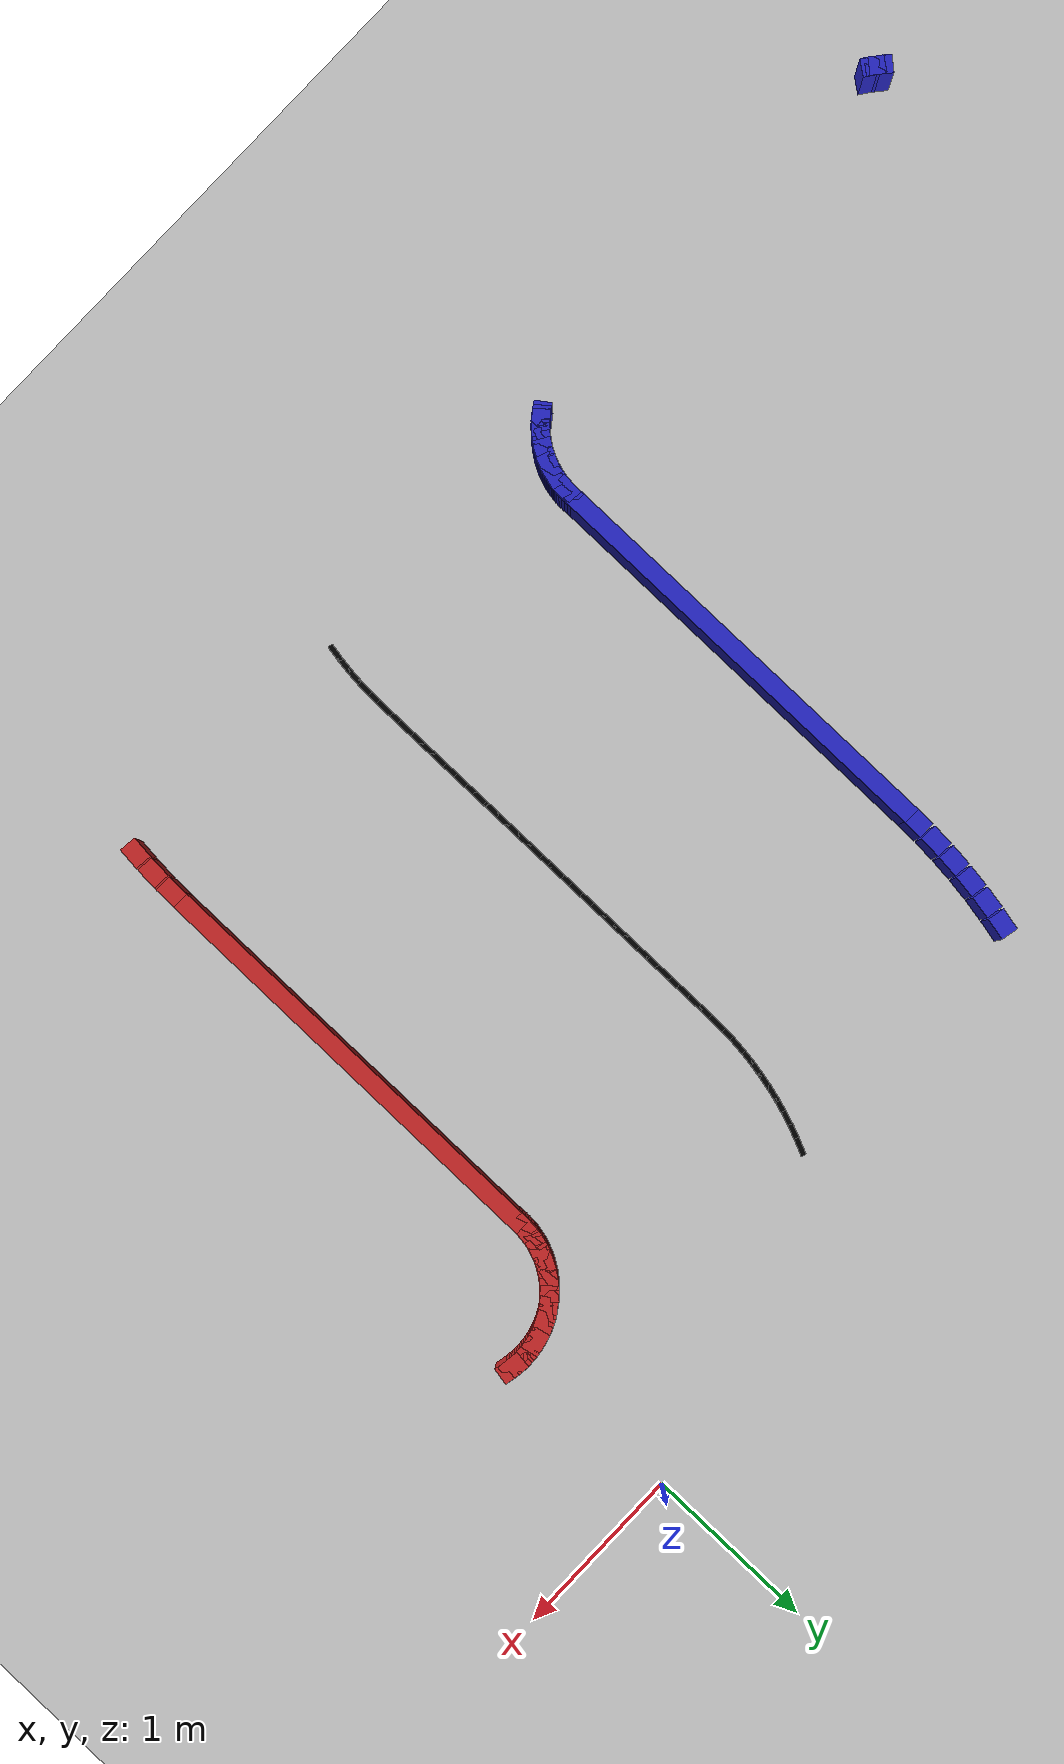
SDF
<sdf version="1.6">
 <world name="new_race_track">
  <include><uri>model://ground_plane</uri></include>
  <include><uri>model://sun</uri></include>
  <model name="race_track">
   <static>true</static>
   <link name="wall_link_22">
    <collision name="c"><geometry><box><size>0.1305 0.1 0.4</size></box></geometry></collision>
    <visual name="v">
     <geometry><box><size>0.1305 0.1 0.4</size></box></geometry>
     <material><ambient>0.15 0.15 0.8 1</ambient><diffuse>0.15 0.15 0.8 1</diffuse></material>
    </visual>
    <pose>-6.3237 -4.3805 0.200 0 0 -0.7048</pose>
   </link>
   <link name="wall_link_23">
    <collision name="c"><geometry><box><size>0.1305 0.1 0.4</size></box></geometry></collision>
    <visual name="v">
     <geometry><box><size>0.1305 0.1 0.4</size></box></geometry>
     <material><ambient>0.15 0.15 0.8 1</ambient><diffuse>0.15 0.15 0.8 1</diffuse></material>
    </visual>
    <pose>-6.3081 -4.3933 0.200 0 0 -0.6646</pose>
   </link>
   <link name="wall_link_24">
    <collision name="c"><geometry><box><size>0.1305 0.1 0.4</size></box></geometry></collision>
    <visual name="v">
     <geometry><box><size>0.1305 0.1 0.4</size></box></geometry>
     <material><ambient>0.15 0.15 0.8 1</ambient><diffuse>0.15 0.15 0.8 1</diffuse></material>
    </visual>
    <pose>-6.2920 -4.4054 0.200 0 0 -0.6243</pose>
   </link>
   <link name="wall_link_56">
    <collision name="c"><geometry><box><size>0.1305 0.1 0.4</size></box></geometry></collision>
    <visual name="v">
     <geometry><box><size>0.1305 0.1 0.4</size></box></geometry>
     <material><ambient>0.15 0.15 0.8 1</ambient><diffuse>0.15 0.15 0.8 1</diffuse></material>
    </visual>
    <pose>-3.7080 -4.4054 0.200 0 0 0.6243</pose>
   </link>
   <link name="wall_link_57">
    <collision name="c"><geometry><box><size>0.1305 0.1 0.4</size></box></geometry></collision>
    <visual name="v">
     <geometry><box><size>0.1305 0.1 0.4</size></box></geometry>
     <material><ambient>0.15 0.15 0.8 1</ambient><diffuse>0.15 0.15 0.8 1</diffuse></material>
    </visual>
    <pose>-3.6919 -4.3933 0.200 0 0 0.6646</pose>
   </link>
   <link name="wall_link_58">
    <collision name="c"><geometry><box><size>0.1305 0.1 0.4</size></box></geometry></collision>
    <visual name="v">
     <geometry><box><size>0.1305 0.1 0.4</size></box></geometry>
     <material><ambient>0.15 0.15 0.8 1</ambient><diffuse>0.15 0.15 0.8 1</diffuse></material>
    </visual>
    <pose>-3.6763 -4.3805 0.200 0 0 0.7048</pose>
   </link>
   <link name="wall_link_59">
    <collision name="c"><geometry><box><size>0.1305 0.1 0.4</size></box></geometry></collision>
    <visual name="v">
     <geometry><box><size>0.1305 0.1 0.4</size></box></geometry>
     <material><ambient>0.15 0.15 0.8 1</ambient><diffuse>0.15 0.15 0.8 1</diffuse></material>
    </visual>
    <pose>-3.6612 -4.3672 0.200 0 0 0.7451</pose>
   </link>
   <link name="wall_link_60">
    <collision name="c"><geometry><box><size>0.1305 0.1 0.4</size></box></geometry></collision>
    <visual name="v">
     <geometry><box><size>0.1305 0.1 0.4</size></box></geometry>
     <material><ambient>0.15 0.15 0.8 1</ambient><diffuse>0.15 0.15 0.8 1</diffuse></material>
    </visual>
    <pose>-3.6467 -4.3533 0.200 0 0 0.7854</pose>
   </link>
   <link name="wall_link_61">
    <collision name="c"><geometry><box><size>0.1305 0.1 0.4</size></box></geometry></collision>
    <visual name="v">
     <geometry><box><size>0.1305 0.1 0.4</size></box></geometry>
     <material><ambient>0.15 0.15 0.8 1</ambient><diffuse>0.15 0.15 0.8 1</diffuse></material>
    </visual>
    <pose>-3.6328 -4.3388 0.200 0 0 0.8257</pose>
   </link>
   <link name="wall_link_62">
    <collision name="c"><geometry><box><size>0.1305 0.1 0.4</size></box></geometry></collision>
    <visual name="v">
     <geometry><box><size>0.1305 0.1 0.4</size></box></geometry>
     <material><ambient>0.15 0.15 0.8 1</ambient><diffuse>0.15 0.15 0.8 1</diffuse></material>
    </visual>
    <pose>-3.6195 -4.3237 0.200 0 0 0.8660</pose>
   </link>
   <link name="wall_link_63">
    <collision name="c"><geometry><box><size>0.1305 0.1 0.4</size></box></geometry></collision>
    <visual name="v">
     <geometry><box><size>0.1305 0.1 0.4</size></box></geometry>
     <material><ambient>0.15 0.15 0.8 1</ambient><diffuse>0.15 0.15 0.8 1</diffuse></material>
    </visual>
    <pose>-3.6067 -4.3081 0.200 0 0 0.9062</pose>
   </link>
   <link name="wall_link_64">
    <collision name="c"><geometry><box><size>0.1305 0.1 0.4</size></box></geometry></collision>
    <visual name="v">
     <geometry><box><size>0.1305 0.1 0.4</size></box></geometry>
     <material><ambient>0.15 0.15 0.8 1</ambient><diffuse>0.15 0.15 0.8 1</diffuse></material>
    </visual>
    <pose>-3.5946 -4.2920 0.200 0 0 0.9465</pose>
   </link>
   <link name="wall_link_65">
    <collision name="c"><geometry><box><size>0.1305 0.1 0.4</size></box></geometry></collision>
    <visual name="v">
     <geometry><box><size>0.1305 0.1 0.4</size></box></geometry>
     <material><ambient>0.15 0.15 0.8 1</ambient><diffuse>0.15 0.15 0.8 1</diffuse></material>
    </visual>
    <pose>-3.5832 -4.2755 0.200 0 0 0.9868</pose>
   </link>
   <link name="wall_link_66">
    <collision name="c"><geometry><box><size>0.1305 0.1 0.4</size></box></geometry></collision>
    <visual name="v">
     <geometry><box><size>0.1305 0.1 0.4</size></box></geometry>
     <material><ambient>0.15 0.15 0.8 1</ambient><diffuse>0.15 0.15 0.8 1</diffuse></material>
    </visual>
    <pose>-3.5725 -4.2585 0.200 0 0 1.0271</pose>
   </link>
   <link name="wall_link_67">
    <collision name="c"><geometry><box><size>0.1305 0.1 0.4</size></box></geometry></collision>
    <visual name="v">
     <geometry><box><size>0.1305 0.1 0.4</size></box></geometry>
     <material><ambient>0.15 0.15 0.8 1</ambient><diffuse>0.15 0.15 0.8 1</diffuse></material>
    </visual>
    <pose>-3.5624 -4.2410 0.200 0 0 1.0673</pose>
   </link>
   <link name="wall_link_68">
    <collision name="c"><geometry><box><size>0.1305 0.1 0.4</size></box></geometry></collision>
    <visual name="v">
     <geometry><box><size>0.1305 0.1 0.4</size></box></geometry>
     <material><ambient>0.15 0.15 0.8 1</ambient><diffuse>0.15 0.15 0.8 1</diffuse></material>
    </visual>
    <pose>-3.5530 -4.2232 0.200 0 0 1.1076</pose>
   </link>
   <link name="wall_link_69">
    <collision name="c"><geometry><box><size>0.1305 0.1 0.4</size></box></geometry></collision>
    <visual name="v">
     <geometry><box><size>0.1305 0.1 0.4</size></box></geometry>
     <material><ambient>0.15 0.15 0.8 1</ambient><diffuse>0.15 0.15 0.8 1</diffuse></material>
    </visual>
    <pose>-3.5444 -4.2050 0.200 0 0 1.1479</pose>
   </link>
   <link name="wall_link_70">
    <collision name="c"><geometry><box><size>0.1305 0.1 0.4</size></box></geometry></collision>
    <visual name="v">
     <geometry><box><size>0.1305 0.1 0.4</size></box></geometry>
     <material><ambient>0.15 0.15 0.8 1</ambient><diffuse>0.15 0.15 0.8 1</diffuse></material>
    </visual>
    <pose>-3.5365 -4.1865 0.200 0 0 1.1882</pose>
   </link>
   <link name="wall_link_71">
    <collision name="c"><geometry><box><size>0.1305 0.1 0.4</size></box></geometry></collision>
    <visual name="v">
     <geometry><box><size>0.1305 0.1 0.4</size></box></geometry>
     <material><ambient>0.15 0.15 0.8 1</ambient><diffuse>0.15 0.15 0.8 1</diffuse></material>
    </visual>
    <pose>-3.5294 -4.1677 0.200 0 0 1.2284</pose>
   </link>
   <link name="wall_link_72">
    <collision name="c"><geometry><box><size>0.1305 0.1 0.4</size></box></geometry></collision>
    <visual name="v">
     <geometry><box><size>0.1305 0.1 0.4</size></box></geometry>
     <material><ambient>0.15 0.15 0.8 1</ambient><diffuse>0.15 0.15 0.8 1</diffuse></material>
    </visual>
    <pose>-3.5230 -4.1486 0.200 0 0 1.2687</pose>
   </link>
   <link name="wall_link_73">
    <collision name="c"><geometry><box><size>0.1305 0.1 0.4</size></box></geometry></collision>
    <visual name="v">
     <geometry><box><size>0.1305 0.1 0.4</size></box></geometry>
     <material><ambient>0.15 0.15 0.8 1</ambient><diffuse>0.15 0.15 0.8 1</diffuse></material>
    </visual>
    <pose>-3.5174 -4.1293 0.200 0 0 1.3090</pose>
   </link>
   <link name="wall_link_74">
    <collision name="c"><geometry><box><size>0.1305 0.1 0.4</size></box></geometry></collision>
    <visual name="v">
     <geometry><box><size>0.1305 0.1 0.4</size></box></geometry>
     <material><ambient>0.15 0.15 0.8 1</ambient><diffuse>0.15 0.15 0.8 1</diffuse></material>
    </visual>
    <pose>-3.5126 -4.1098 0.200 0 0 1.3493</pose>
   </link>
   <link name="wall_link_75">
    <collision name="c"><geometry><box><size>0.1305 0.1 0.4</size></box></geometry></collision>
    <visual name="v">
     <geometry><box><size>0.1305 0.1 0.4</size></box></geometry>
     <material><ambient>0.15 0.15 0.8 1</ambient><diffuse>0.15 0.15 0.8 1</diffuse></material>
    </visual>
    <pose>-3.5086 -4.0901 0.200 0 0 1.3896</pose>
   </link>
   <link name="wall_link_76">
    <collision name="c"><geometry><box><size>0.1305 0.1 0.4</size></box></geometry></collision>
    <visual name="v">
     <geometry><box><size>0.1305 0.1 0.4</size></box></geometry>
     <material><ambient>0.15 0.15 0.8 1</ambient><diffuse>0.15 0.15 0.8 1</diffuse></material>
    </visual>
    <pose>-3.5054 -4.0702 0.200 0 0 1.4298</pose>
   </link>
   <link name="wall_link_77">
    <collision name="c"><geometry><box><size>0.1305 0.1 0.4</size></box></geometry></collision>
    <visual name="v">
     <geometry><box><size>0.1305 0.1 0.4</size></box></geometry>
     <material><ambient>0.15 0.15 0.8 1</ambient><diffuse>0.15 0.15 0.8 1</diffuse></material>
    </visual>
    <pose>-3.5029 -4.0502 0.200 0 0 1.4701</pose>
   </link>
   <link name="wall_link_78">
    <collision name="c"><geometry><box><size>0.1305 0.1 0.4</size></box></geometry></collision>
    <visual name="v">
     <geometry><box><size>0.1305 0.1 0.4</size></box></geometry>
     <material><ambient>0.15 0.15 0.8 1</ambient><diffuse>0.15 0.15 0.8 1</diffuse></material>
    </visual>
    <pose>-3.5013 -4.0302 0.200 0 0 1.5104</pose>
   </link>
   <link name="wall_link_79">
    <collision name="c"><geometry><box><size>0.1305 0.1 0.4</size></box></geometry></collision>
    <visual name="v">
     <geometry><box><size>0.1305 0.1 0.4</size></box></geometry>
     <material><ambient>0.15 0.15 0.8 1</ambient><diffuse>0.15 0.15 0.8 1</diffuse></material>
    </visual>
    <pose>-3.5005 -4.0101 0.200 0 0 1.5507</pose>
   </link>
   <link name="merged_wall_link_80">
    <pose>-3.5000 -2.7600 0.2000 0.0000 0.0000 1.5708</pose>
    <collision name="c"><geometry><box><size>2.5300 0.1000 0.4000</size></box></geometry></collision>
    <visual name="v">
     <geometry><box><size>2.5300 0.1000 0.4000</size></box></geometry>
     <material><ambient>0.15 0.15 0.8 1</ambient><diffuse>0.15 0.15 0.8 1</diffuse></material>
    </visual>
   </link>
   <link name="wall_link_81">
    <collision name="c"><geometry><box><size>0.1305 0.1 0.4</size></box></geometry></collision>
    <visual name="v">
     <geometry><box><size>0.1305 0.1 0.4</size></box></geometry>
     <material><ambient>0.15 0.15 0.8 1</ambient><diffuse>0.15 0.15 0.8 1</diffuse></material>
    </visual>
    <pose>-3.4989 -1.4495 0.200 0 0 1.5507</pose>
   </link>
   <link name="wall_link_82">
    <collision name="c"><geometry><box><size>0.1305 0.1 0.4</size></box></geometry></collision>
    <visual name="v">
     <geometry><box><size>0.1305 0.1 0.4</size></box></geometry>
     <material><ambient>0.15 0.15 0.8 1</ambient><diffuse>0.15 0.15 0.8 1</diffuse></material>
    </visual>
    <pose>-3.4932 -1.3087 0.200 0 0 1.5104</pose>
   </link>
   <link name="wall_link_83">
    <collision name="c"><geometry><box><size>0.1305 0.1 0.4</size></box></geometry></collision>
    <visual name="v">
     <geometry><box><size>0.1305 0.1 0.4</size></box></geometry>
     <material><ambient>0.15 0.15 0.8 1</ambient><diffuse>0.15 0.15 0.8 1</diffuse></material>
    </visual>
    <pose>-3.4819 -1.1682 0.200 0 0 1.4701</pose>
   </link>
   <link name="wall_link_84">
    <collision name="c"><geometry><box><size>0.1305 0.1 0.4</size></box></geometry></collision>
    <visual name="v">
     <geometry><box><size>0.1305 0.1 0.4</size></box></geometry>
     <material><ambient>0.15 0.15 0.8 1</ambient><diffuse>0.15 0.15 0.8 1</diffuse></material>
    </visual>
    <pose>-3.4649 -1.0283 0.200 0 0 1.4298</pose>
   </link>
   <link name="wall_link_85">
    <collision name="c"><geometry><box><size>0.1305 0.1 0.4</size></box></geometry></collision>
    <visual name="v">
     <geometry><box><size>0.1305 0.1 0.4</size></box></geometry>
     <material><ambient>0.15 0.15 0.8 1</ambient><diffuse>0.15 0.15 0.8 1</diffuse></material>
    </visual>
    <pose>-3.4423 -0.8892 0.200 0 0 1.3896</pose>
   </link>
   <link name="wall_link_86">
    <collision name="c"><geometry><box><size>0.1305 0.1 0.4</size></box></geometry></collision>
    <visual name="v">
     <geometry><box><size>0.1305 0.1 0.4</size></box></geometry>
     <material><ambient>0.15 0.15 0.8 1</ambient><diffuse>0.15 0.15 0.8 1</diffuse></material>
    </visual>
    <pose>-3.4141 -0.7511 0.200 0 0 1.3493</pose>
   </link>
   <link name="wall_link_489">
    <collision name="c"><geometry><box><size>0.1305 0.1 0.4</size></box></geometry></collision>
    <visual name="v">
     <geometry><box><size>0.1305 0.1 0.4</size></box></geometry>
     <material><ambient>0.8 0.15 0.15 1</ambient><diffuse>0.8 0.15 0.15 1</diffuse></material>
    </visual>
    <pose>-0.5181 -4.3518 0.200 0 0 1.4701</pose>
   </link>
   <link name="wall_link_490">
    <collision name="c"><geometry><box><size>0.1305 0.1 0.4</size></box></geometry></collision>
    <visual name="v">
     <geometry><box><size>0.1305 0.1 0.4</size></box></geometry>
     <material><ambient>0.8 0.15 0.15 1</ambient><diffuse>0.8 0.15 0.15 1</diffuse></material>
    </visual>
    <pose>-0.5068 -4.2113 0.200 0 0 1.5104</pose>
   </link>
   <link name="wall_link_491">
    <collision name="c"><geometry><box><size>0.1305 0.1 0.4</size></box></geometry></collision>
    <visual name="v">
     <geometry><box><size>0.1305 0.1 0.4</size></box></geometry>
     <material><ambient>0.8 0.15 0.15 1</ambient><diffuse>0.8 0.15 0.15 1</diffuse></material>
    </visual>
    <pose>-0.5011 -4.0705 0.200 0 0 1.5507</pose>
   </link>
   <link name="merged_wall_link_492">
    <pose>-0.5000 -2.7600 0.2000 0.0000 0.0000 1.5708</pose>
    <collision name="c"><geometry><box><size>2.5300 0.1000 0.4000</size></box></geometry></collision>
    <visual name="v">
     <geometry><box><size>2.5300 0.1000 0.4000</size></box></geometry>
     <material><ambient>0.8 0.15 0.15 1</ambient><diffuse>0.8 0.15 0.15 1</diffuse></material>
    </visual>
   </link>
   <link name="wall_link_493">
    <collision name="c"><geometry><box><size>0.1305 0.1 0.4</size></box></geometry></collision>
    <visual name="v">
     <geometry><box><size>0.1305 0.1 0.4</size></box></geometry>
     <material><ambient>0.8 0.15 0.15 1</ambient><diffuse>0.8 0.15 0.15 1</diffuse></material>
    </visual>
    <pose>-0.4995 -1.5099 0.200 0 0 1.5507</pose>
   </link>
   <link name="wall_link_494">
    <collision name="c"><geometry><box><size>0.1305 0.1 0.4</size></box></geometry></collision>
    <visual name="v">
     <geometry><box><size>0.1305 0.1 0.4</size></box></geometry>
     <material><ambient>0.8 0.15 0.15 1</ambient><diffuse>0.8 0.15 0.15 1</diffuse></material>
    </visual>
    <pose>-0.4987 -1.4898 0.200 0 0 1.5104</pose>
   </link>
   <link name="wall_link_495">
    <collision name="c"><geometry><box><size>0.1305 0.1 0.4</size></box></geometry></collision>
    <visual name="v">
     <geometry><box><size>0.1305 0.1 0.4</size></box></geometry>
     <material><ambient>0.8 0.15 0.15 1</ambient><diffuse>0.8 0.15 0.15 1</diffuse></material>
    </visual>
    <pose>-0.4971 -1.4698 0.200 0 0 1.4701</pose>
   </link>
   <link name="wall_link_496">
    <collision name="c"><geometry><box><size>0.1305 0.1 0.4</size></box></geometry></collision>
    <visual name="v">
     <geometry><box><size>0.1305 0.1 0.4</size></box></geometry>
     <material><ambient>0.8 0.15 0.15 1</ambient><diffuse>0.8 0.15 0.15 1</diffuse></material>
    </visual>
    <pose>-0.4946 -1.4498 0.200 0 0 1.4298</pose>
   </link>
   <link name="wall_link_497">
    <collision name="c"><geometry><box><size>0.1305 0.1 0.4</size></box></geometry></collision>
    <visual name="v">
     <geometry><box><size>0.1305 0.1 0.4</size></box></geometry>
     <material><ambient>0.8 0.15 0.15 1</ambient><diffuse>0.8 0.15 0.15 1</diffuse></material>
    </visual>
    <pose>-0.4914 -1.4299 0.200 0 0 1.3896</pose>
   </link>
   <link name="wall_link_498">
    <collision name="c"><geometry><box><size>0.1305 0.1 0.4</size></box></geometry></collision>
    <visual name="v">
     <geometry><box><size>0.1305 0.1 0.4</size></box></geometry>
     <material><ambient>0.8 0.15 0.15 1</ambient><diffuse>0.8 0.15 0.15 1</diffuse></material>
    </visual>
    <pose>-0.4874 -1.4102 0.200 0 0 1.3493</pose>
   </link>
   <link name="wall_link_499">
    <collision name="c"><geometry><box><size>0.1305 0.1 0.4</size></box></geometry></collision>
    <visual name="v">
     <geometry><box><size>0.1305 0.1 0.4</size></box></geometry>
     <material><ambient>0.8 0.15 0.15 1</ambient><diffuse>0.8 0.15 0.15 1</diffuse></material>
    </visual>
    <pose>-0.4826 -1.3907 0.200 0 0 1.3090</pose>
   </link>
   <link name="wall_link_500">
    <collision name="c"><geometry><box><size>0.1305 0.1 0.4</size></box></geometry></collision>
    <visual name="v">
     <geometry><box><size>0.1305 0.1 0.4</size></box></geometry>
     <material><ambient>0.8 0.15 0.15 1</ambient><diffuse>0.8 0.15 0.15 1</diffuse></material>
    </visual>
    <pose>-0.4770 -1.3714 0.200 0 0 1.2687</pose>
   </link>
   <link name="wall_link_501">
    <collision name="c"><geometry><box><size>0.1305 0.1 0.4</size></box></geometry></collision>
    <visual name="v">
     <geometry><box><size>0.1305 0.1 0.4</size></box></geometry>
     <material><ambient>0.8 0.15 0.15 1</ambient><diffuse>0.8 0.15 0.15 1</diffuse></material>
    </visual>
    <pose>-0.4706 -1.3523 0.200 0 0 1.2284</pose>
   </link>
   <link name="wall_link_502">
    <collision name="c"><geometry><box><size>0.1305 0.1 0.4</size></box></geometry></collision>
    <visual name="v">
     <geometry><box><size>0.1305 0.1 0.4</size></box></geometry>
     <material><ambient>0.8 0.15 0.15 1</ambient><diffuse>0.8 0.15 0.15 1</diffuse></material>
    </visual>
    <pose>-0.4635 -1.3335 0.200 0 0 1.1882</pose>
   </link>
   <link name="wall_link_503">
    <collision name="c"><geometry><box><size>0.1305 0.1 0.4</size></box></geometry></collision>
    <visual name="v">
     <geometry><box><size>0.1305 0.1 0.4</size></box></geometry>
     <material><ambient>0.8 0.15 0.15 1</ambient><diffuse>0.8 0.15 0.15 1</diffuse></material>
    </visual>
    <pose>-0.4556 -1.3150 0.200 0 0 1.1479</pose>
   </link>
   <link name="wall_link_504">
    <collision name="c"><geometry><box><size>0.1305 0.1 0.4</size></box></geometry></collision>
    <visual name="v">
     <geometry><box><size>0.1305 0.1 0.4</size></box></geometry>
     <material><ambient>0.8 0.15 0.15 1</ambient><diffuse>0.8 0.15 0.15 1</diffuse></material>
    </visual>
    <pose>-0.4470 -1.2968 0.200 0 0 1.1076</pose>
   </link>
   <link name="wall_link_505">
    <collision name="c"><geometry><box><size>0.1305 0.1 0.4</size></box></geometry></collision>
    <visual name="v">
     <geometry><box><size>0.1305 0.1 0.4</size></box></geometry>
     <material><ambient>0.8 0.15 0.15 1</ambient><diffuse>0.8 0.15 0.15 1</diffuse></material>
    </visual>
    <pose>-0.4376 -1.2790 0.200 0 0 1.0673</pose>
   </link>
   <link name="wall_link_506">
    <collision name="c"><geometry><box><size>0.1305 0.1 0.4</size></box></geometry></collision>
    <visual name="v">
     <geometry><box><size>0.1305 0.1 0.4</size></box></geometry>
     <material><ambient>0.8 0.15 0.15 1</ambient><diffuse>0.8 0.15 0.15 1</diffuse></material>
    </visual>
    <pose>-0.4275 -1.2615 0.200 0 0 1.0271</pose>
   </link>
   <link name="wall_link_507">
    <collision name="c"><geometry><box><size>0.1305 0.1 0.4</size></box></geometry></collision>
    <visual name="v">
     <geometry><box><size>0.1305 0.1 0.4</size></box></geometry>
     <material><ambient>0.8 0.15 0.15 1</ambient><diffuse>0.8 0.15 0.15 1</diffuse></material>
    </visual>
    <pose>-0.4168 -1.2445 0.200 0 0 0.9868</pose>
   </link>
   <link name="wall_link_508">
    <collision name="c"><geometry><box><size>0.1305 0.1 0.4</size></box></geometry></collision>
    <visual name="v">
     <geometry><box><size>0.1305 0.1 0.4</size></box></geometry>
     <material><ambient>0.8 0.15 0.15 1</ambient><diffuse>0.8 0.15 0.15 1</diffuse></material>
    </visual>
    <pose>-0.4054 -1.2280 0.200 0 0 0.9465</pose>
   </link>
   <link name="wall_link_509">
    <collision name="c"><geometry><box><size>0.1305 0.1 0.4</size></box></geometry></collision>
    <visual name="v">
     <geometry><box><size>0.1305 0.1 0.4</size></box></geometry>
     <material><ambient>0.8 0.15 0.15 1</ambient><diffuse>0.8 0.15 0.15 1</diffuse></material>
    </visual>
    <pose>-0.3933 -1.2119 0.200 0 0 0.9062</pose>
   </link>
   <link name="wall_link_510">
    <collision name="c"><geometry><box><size>0.1305 0.1 0.4</size></box></geometry></collision>
    <visual name="v">
     <geometry><box><size>0.1305 0.1 0.4</size></box></geometry>
     <material><ambient>0.8 0.15 0.15 1</ambient><diffuse>0.8 0.15 0.15 1</diffuse></material>
    </visual>
    <pose>-0.3805 -1.1963 0.200 0 0 0.8660</pose>
   </link>
   <link name="wall_link_511">
    <collision name="c"><geometry><box><size>0.1305 0.1 0.4</size></box></geometry></collision>
    <visual name="v">
     <geometry><box><size>0.1305 0.1 0.4</size></box></geometry>
     <material><ambient>0.8 0.15 0.15 1</ambient><diffuse>0.8 0.15 0.15 1</diffuse></material>
    </visual>
    <pose>-0.3672 -1.1812 0.200 0 0 0.8257</pose>
   </link>
   <link name="wall_link_512">
    <collision name="c"><geometry><box><size>0.1305 0.1 0.4</size></box></geometry></collision>
    <visual name="v">
     <geometry><box><size>0.1305 0.1 0.4</size></box></geometry>
     <material><ambient>0.8 0.15 0.15 1</ambient><diffuse>0.8 0.15 0.15 1</diffuse></material>
    </visual>
    <pose>-0.3533 -1.1667 0.200 0 0 0.7854</pose>
   </link>
   <link name="wall_link_513">
    <collision name="c"><geometry><box><size>0.1305 0.1 0.4</size></box></geometry></collision>
    <visual name="v">
     <geometry><box><size>0.1305 0.1 0.4</size></box></geometry>
     <material><ambient>0.8 0.15 0.15 1</ambient><diffuse>0.8 0.15 0.15 1</diffuse></material>
    </visual>
    <pose>-0.3388 -1.1528 0.200 0 0 0.7451</pose>
   </link>
   <link name="wall_link_514">
    <collision name="c"><geometry><box><size>0.1305 0.1 0.4</size></box></geometry></collision>
    <visual name="v">
     <geometry><box><size>0.1305 0.1 0.4</size></box></geometry>
     <material><ambient>0.8 0.15 0.15 1</ambient><diffuse>0.8 0.15 0.15 1</diffuse></material>
    </visual>
    <pose>-0.3237 -1.1395 0.200 0 0 0.7048</pose>
   </link>
   <link name="wall_link_515">
    <collision name="c"><geometry><box><size>0.1305 0.1 0.4</size></box></geometry></collision>
    <visual name="v">
     <geometry><box><size>0.1305 0.1 0.4</size></box></geometry>
     <material><ambient>0.8 0.15 0.15 1</ambient><diffuse>0.8 0.15 0.15 1</diffuse></material>
    </visual>
    <pose>-0.3081 -1.1267 0.200 0 0 0.6646</pose>
   </link>
   <link name="wall_link_516">
    <collision name="c"><geometry><box><size>0.1305 0.1 0.4</size></box></geometry></collision>
    <visual name="v">
     <geometry><box><size>0.1305 0.1 0.4</size></box></geometry>
     <material><ambient>0.8 0.15 0.15 1</ambient><diffuse>0.8 0.15 0.15 1</diffuse></material>
    </visual>
    <pose>-0.2920 -1.1146 0.200 0 0 0.6243</pose>
   </link>
   <link name="wall_link_517">
    <collision name="c"><geometry><box><size>0.1305 0.1 0.4</size></box></geometry></collision>
    <visual name="v">
     <geometry><box><size>0.1305 0.1 0.4</size></box></geometry>
     <material><ambient>0.8 0.15 0.15 1</ambient><diffuse>0.8 0.15 0.15 1</diffuse></material>
    </visual>
    <pose>-0.2755 -1.1032 0.200 0 0 0.5840</pose>
   </link>
   <link name="wall_link_518">
    <collision name="c"><geometry><box><size>0.1305 0.1 0.4</size></box></geometry></collision>
    <visual name="v">
     <geometry><box><size>0.1305 0.1 0.4</size></box></geometry>
     <material><ambient>0.8 0.15 0.15 1</ambient><diffuse>0.8 0.15 0.15 1</diffuse></material>
    </visual>
    <pose>-0.2585 -1.0925 0.200 0 0 0.5437</pose>
   </link>
   <link name="wall_link_519">
    <collision name="c"><geometry><box><size>0.1305 0.1 0.4</size></box></geometry></collision>
    <visual name="v">
     <geometry><box><size>0.1305 0.1 0.4</size></box></geometry>
     <material><ambient>0.8 0.15 0.15 1</ambient><diffuse>0.8 0.15 0.15 1</diffuse></material>
    </visual>
    <pose>-0.2410 -1.0824 0.200 0 0 0.5035</pose>
   </link>
   <link name="wall_link_520">
    <collision name="c"><geometry><box><size>0.1305 0.1 0.4</size></box></geometry></collision>
    <visual name="v">
     <geometry><box><size>0.1305 0.1 0.4</size></box></geometry>
     <material><ambient>0.8 0.15 0.15 1</ambient><diffuse>0.8 0.15 0.15 1</diffuse></material>
    </visual>
    <pose>-0.2232 -1.0730 0.200 0 0 0.4632</pose>
   </link>
   <link name="wall_link_521">
    <collision name="c"><geometry><box><size>0.1305 0.1 0.4</size></box></geometry></collision>
    <visual name="v">
     <geometry><box><size>0.1305 0.1 0.4</size></box></geometry>
     <material><ambient>0.8 0.15 0.15 1</ambient><diffuse>0.8 0.15 0.15 1</diffuse></material>
    </visual>
    <pose>-0.2050 -1.0644 0.200 0 0 0.4229</pose>
   </link>
   <link name="wall_link_522">
    <collision name="c"><geometry><box><size>0.1305 0.1 0.4</size></box></geometry></collision>
    <visual name="v">
     <geometry><box><size>0.1305 0.1 0.4</size></box></geometry>
     <material><ambient>0.8 0.15 0.15 1</ambient><diffuse>0.8 0.15 0.15 1</diffuse></material>
    </visual>
    <pose>-0.1865 -1.0565 0.200 0 0 0.3826</pose>
   </link>
   <link name="wall_link_523">
    <collision name="c"><geometry><box><size>0.1305 0.1 0.4</size></box></geometry></collision>
    <visual name="v">
     <geometry><box><size>0.1305 0.1 0.4</size></box></geometry>
     <material><ambient>0.8 0.15 0.15 1</ambient><diffuse>0.8 0.15 0.15 1</diffuse></material>
    </visual>
    <pose>-0.1677 -1.0494 0.200 0 0 0.3424</pose>
   </link>
   <link name="wall_link_524">
    <collision name="c"><geometry><box><size>0.1305 0.1 0.4</size></box></geometry></collision>
    <visual name="v">
     <geometry><box><size>0.1305 0.1 0.4</size></box></geometry>
     <material><ambient>0.8 0.15 0.15 1</ambient><diffuse>0.8 0.15 0.15 1</diffuse></material>
    </visual>
    <pose>-0.1486 -1.0430 0.200 0 0 0.3021</pose>
   </link>
   <link name="wall_link_525">
    <collision name="c"><geometry><box><size>0.1305 0.1 0.4</size></box></geometry></collision>
    <visual name="v">
     <geometry><box><size>0.1305 0.1 0.4</size></box></geometry>
     <material><ambient>0.8 0.15 0.15 1</ambient><diffuse>0.8 0.15 0.15 1</diffuse></material>
    </visual>
    <pose>-0.1293 -1.0374 0.200 0 0 0.2618</pose>
   </link>
   <link name="wall_link_526">
    <collision name="c"><geometry><box><size>0.1305 0.1 0.4</size></box></geometry></collision>
    <visual name="v">
     <geometry><box><size>0.1305 0.1 0.4</size></box></geometry>
     <material><ambient>0.8 0.15 0.15 1</ambient><diffuse>0.8 0.15 0.15 1</diffuse></material>
    </visual>
    <pose>-0.1098 -1.0326 0.200 0 0 0.2215</pose>
   </link>
   <link name="wall_link_527">
    <collision name="c"><geometry><box><size>0.1305 0.1 0.4</size></box></geometry></collision>
    <visual name="v">
     <geometry><box><size>0.1305 0.1 0.4</size></box></geometry>
     <material><ambient>0.8 0.15 0.15 1</ambient><diffuse>0.8 0.15 0.15 1</diffuse></material>
    </visual>
    <pose>-0.0901 -1.0286 0.200 0 0 0.1812</pose>
   </link>
   <link name="wall_link_528">
    <collision name="c"><geometry><box><size>0.1305 0.1 0.4</size></box></geometry></collision>
    <visual name="v">
     <geometry><box><size>0.1305 0.1 0.4</size></box></geometry>
     <material><ambient>0.8 0.15 0.15 1</ambient><diffuse>0.8 0.15 0.15 1</diffuse></material>
    </visual>
    <pose>-0.0702 -1.0254 0.200 0 0 0.1410</pose>
   </link>
   <link name="wall_link_529">
    <collision name="c"><geometry><box><size>0.1305 0.1 0.4</size></box></geometry></collision>
    <visual name="v">
     <geometry><box><size>0.1305 0.1 0.4</size></box></geometry>
     <material><ambient>0.8 0.15 0.15 1</ambient><diffuse>0.8 0.15 0.15 1</diffuse></material>
    </visual>
    <pose>-0.0502 -1.0229 0.200 0 0 0.1007</pose>
   </link>
   <link name="wall_link_530">
    <collision name="c"><geometry><box><size>0.1305 0.1 0.4</size></box></geometry></collision>
    <visual name="v">
     <geometry><box><size>0.1305 0.1 0.4</size></box></geometry>
     <material><ambient>0.8 0.15 0.15 1</ambient><diffuse>0.8 0.15 0.15 1</diffuse></material>
    </visual>
    <pose>-0.0302 -1.0213 0.200 0 0 0.0604</pose>
   </link>
   <link name="wall_link_531">
    <collision name="c"><geometry><box><size>0.1305 0.1 0.4</size></box></geometry></collision>
    <visual name="v">
     <geometry><box><size>0.1305 0.1 0.4</size></box></geometry>
     <material><ambient>0.8 0.15 0.15 1</ambient><diffuse>0.8 0.15 0.15 1</diffuse></material>
    </visual>
    <pose>-0.0101 -1.0205 0.200 0 0 0.0201</pose>
   </link>
   <link name="wall_link_532">
    <collision name="c"><geometry><box><size>0.1305 0.1 0.4</size></box></geometry></collision>
    <visual name="v">
     <geometry><box><size>0.1305 0.1 0.4</size></box></geometry>
     <material><ambient>0.8 0.15 0.15 1</ambient><diffuse>0.8 0.15 0.15 1</diffuse></material>
    </visual>
    <pose>0.0101 -1.0205 0.200 0 0 -0.0201</pose>
   </link>
   <link name="wall_link_533">
    <collision name="c"><geometry><box><size>0.1305 0.1 0.4</size></box></geometry></collision>
    <visual name="v">
     <geometry><box><size>0.1305 0.1 0.4</size></box></geometry>
     <material><ambient>0.8 0.15 0.15 1</ambient><diffuse>0.8 0.15 0.15 1</diffuse></material>
    </visual>
    <pose>0.0302 -1.0213 0.200 0 0 -0.0604</pose>
   </link>
   <link name="wall_link_534">
    <collision name="c"><geometry><box><size>0.1305 0.1 0.4</size></box></geometry></collision>
    <visual name="v">
     <geometry><box><size>0.1305 0.1 0.4</size></box></geometry>
     <material><ambient>0.8 0.15 0.15 1</ambient><diffuse>0.8 0.15 0.15 1</diffuse></material>
    </visual>
    <pose>0.0502 -1.0229 0.200 0 0 -0.1007</pose>
   </link>
   <link name="wall_link_535">
    <collision name="c"><geometry><box><size>0.1305 0.1 0.4</size></box></geometry></collision>
    <visual name="v">
     <geometry><box><size>0.1305 0.1 0.4</size></box></geometry>
     <material><ambient>0.8 0.15 0.15 1</ambient><diffuse>0.8 0.15 0.15 1</diffuse></material>
    </visual>
    <pose>0.0702 -1.0254 0.200 0 0 -0.1410</pose>
   </link>
   <link name="wall_link_536">
    <collision name="c"><geometry><box><size>0.1305 0.1 0.4</size></box></geometry></collision>
    <visual name="v">
     <geometry><box><size>0.1305 0.1 0.4</size></box></geometry>
     <material><ambient>0.8 0.15 0.15 1</ambient><diffuse>0.8 0.15 0.15 1</diffuse></material>
    </visual>
    <pose>0.0901 -1.0286 0.200 0 0 -0.1812</pose>
   </link>
   <link name="line_link_972">
    <visual name="v">
     <geometry><box><size>0.1005 0.03 0.002</size></box></geometry>
     <material><ambient>0 0 0 1</ambient><diffuse>0 0 0 1</diffuse></material>
    </visual>
    <pose>-2.0332 -4.3604 0.002 0 0 1.3896</pose>
   </link>
   <link name="line_link_973">
    <visual name="v">
     <geometry><box><size>0.1005 0.03 0.002</size></box></geometry>
     <material><ambient>0 0 0 1</ambient><diffuse>0 0 0 1</diffuse></material>
    </visual>
    <pose>-2.0202 -4.2809 0.002 0 0 1.4298</pose>
   </link>
   <link name="line_link_974">
    <visual name="v">
     <geometry><box><size>0.1005 0.03 0.002</size></box></geometry>
     <material><ambient>0 0 0 1</ambient><diffuse>0 0 0 1</diffuse></material>
    </visual>
    <pose>-2.0105 -4.2010 0.002 0 0 1.4701</pose>
   </link>
   <link name="line_link_975">
    <visual name="v">
     <geometry><box><size>0.1005 0.03 0.002</size></box></geometry>
     <material><ambient>0 0 0 1</ambient><diffuse>0 0 0 1</diffuse></material>
    </visual>
    <pose>-2.0041 -4.1207 0.002 0 0 1.5104</pose>
   </link>
   <link name="line_link_976">
    <visual name="v">
     <geometry><box><size>0.1005 0.03 0.002</size></box></geometry>
     <material><ambient>0 0 0 1</ambient><diffuse>0 0 0 1</diffuse></material>
    </visual>
    <pose>-2.0008 -4.0403 0.002 0 0 1.5507</pose>
   </link>
   <link name="line_link_977">
    <visual name="v">
     <geometry><box><size>0.1000 0.03 0.002</size></box></geometry>
     <material><ambient>0 0 0 1</ambient><diffuse>0 0 0 1</diffuse></material>
    </visual>
    <pose>-2.0000 -3.9600 0.002 0 0 1.5708</pose>
   </link>
   <link name="line_link_978">
    <visual name="v">
     <geometry><box><size>0.1000 0.03 0.002</size></box></geometry>
     <material><ambient>0 0 0 1</ambient><diffuse>0 0 0 1</diffuse></material>
    </visual>
    <pose>-2.0000 -3.8800 0.002 0 0 1.5708</pose>
   </link>
   <link name="line_link_979">
    <visual name="v">
     <geometry><box><size>0.1000 0.03 0.002</size></box></geometry>
     <material><ambient>0 0 0 1</ambient><diffuse>0 0 0 1</diffuse></material>
    </visual>
    <pose>-2.0000 -3.8000 0.002 0 0 1.5708</pose>
   </link>
   <link name="line_link_980">
    <visual name="v">
     <geometry><box><size>0.1000 0.03 0.002</size></box></geometry>
     <material><ambient>0 0 0 1</ambient><diffuse>0 0 0 1</diffuse></material>
    </visual>
    <pose>-2.0000 -3.7200 0.002 0 0 1.5708</pose>
   </link>
   <link name="line_link_981">
    <visual name="v">
     <geometry><box><size>0.1000 0.03 0.002</size></box></geometry>
     <material><ambient>0 0 0 1</ambient><diffuse>0 0 0 1</diffuse></material>
    </visual>
    <pose>-2.0000 -3.6400 0.002 0 0 1.5708</pose>
   </link>
   <link name="line_link_982">
    <visual name="v">
     <geometry><box><size>0.1000 0.03 0.002</size></box></geometry>
     <material><ambient>0 0 0 1</ambient><diffuse>0 0 0 1</diffuse></material>
    </visual>
    <pose>-2.0000 -3.5600 0.002 0 0 1.5708</pose>
   </link>
   <link name="line_link_983">
    <visual name="v">
     <geometry><box><size>0.1000 0.03 0.002</size></box></geometry>
     <material><ambient>0 0 0 1</ambient><diffuse>0 0 0 1</diffuse></material>
    </visual>
    <pose>-2.0000 -3.4800 0.002 0 0 1.5708</pose>
   </link>
   <link name="line_link_984">
    <visual name="v">
     <geometry><box><size>0.1000 0.03 0.002</size></box></geometry>
     <material><ambient>0 0 0 1</ambient><diffuse>0 0 0 1</diffuse></material>
    </visual>
    <pose>-2.0000 -3.4000 0.002 0 0 1.5708</pose>
   </link>
   <link name="line_link_985">
    <visual name="v">
     <geometry><box><size>0.1000 0.03 0.002</size></box></geometry>
     <material><ambient>0 0 0 1</ambient><diffuse>0 0 0 1</diffuse></material>
    </visual>
    <pose>-2.0000 -3.3200 0.002 0 0 1.5708</pose>
   </link>
   <link name="line_link_986">
    <visual name="v">
     <geometry><box><size>0.1000 0.03 0.002</size></box></geometry>
     <material><ambient>0 0 0 1</ambient><diffuse>0 0 0 1</diffuse></material>
    </visual>
    <pose>-2.0000 -3.2400 0.002 0 0 1.5708</pose>
   </link>
   <link name="line_link_987">
    <visual name="v">
     <geometry><box><size>0.1000 0.03 0.002</size></box></geometry>
     <material><ambient>0 0 0 1</ambient><diffuse>0 0 0 1</diffuse></material>
    </visual>
    <pose>-2.0000 -3.1600 0.002 0 0 1.5708</pose>
   </link>
   <link name="line_link_988">
    <visual name="v">
     <geometry><box><size>0.1000 0.03 0.002</size></box></geometry>
     <material><ambient>0 0 0 1</ambient><diffuse>0 0 0 1</diffuse></material>
    </visual>
    <pose>-2.0000 -3.0800 0.002 0 0 1.5708</pose>
   </link>
   <link name="line_link_989">
    <visual name="v">
     <geometry><box><size>0.1000 0.03 0.002</size></box></geometry>
     <material><ambient>0 0 0 1</ambient><diffuse>0 0 0 1</diffuse></material>
    </visual>
    <pose>-2.0000 -3.0000 0.002 0 0 1.5708</pose>
   </link>
   <link name="line_link_990">
    <visual name="v">
     <geometry><box><size>0.1000 0.03 0.002</size></box></geometry>
     <material><ambient>0 0 0 1</ambient><diffuse>0 0 0 1</diffuse></material>
    </visual>
    <pose>-2.0000 -2.9200 0.002 0 0 1.5708</pose>
   </link>
   <link name="line_link_991">
    <visual name="v">
     <geometry><box><size>0.1000 0.03 0.002</size></box></geometry>
     <material><ambient>0 0 0 1</ambient><diffuse>0 0 0 1</diffuse></material>
    </visual>
    <pose>-2.0000 -2.8400 0.002 0 0 1.5708</pose>
   </link>
   <link name="line_link_992">
    <visual name="v">
     <geometry><box><size>0.1000 0.03 0.002</size></box></geometry>
     <material><ambient>0 0 0 1</ambient><diffuse>0 0 0 1</diffuse></material>
    </visual>
    <pose>-2.0000 -2.7600 0.002 0 0 1.5708</pose>
   </link>
   <link name="line_link_993">
    <visual name="v">
     <geometry><box><size>0.1000 0.03 0.002</size></box></geometry>
     <material><ambient>0 0 0 1</ambient><diffuse>0 0 0 1</diffuse></material>
    </visual>
    <pose>-2.0000 -2.6800 0.002 0 0 1.5708</pose>
   </link>
   <link name="line_link_994">
    <visual name="v">
     <geometry><box><size>0.1000 0.03 0.002</size></box></geometry>
     <material><ambient>0 0 0 1</ambient><diffuse>0 0 0 1</diffuse></material>
    </visual>
    <pose>-2.0000 -2.6000 0.002 0 0 1.5708</pose>
   </link>
   <link name="line_link_995">
    <visual name="v">
     <geometry><box><size>0.1000 0.03 0.002</size></box></geometry>
     <material><ambient>0 0 0 1</ambient><diffuse>0 0 0 1</diffuse></material>
    </visual>
    <pose>-2.0000 -2.5200 0.002 0 0 1.5708</pose>
   </link>
   <link name="line_link_996">
    <visual name="v">
     <geometry><box><size>0.1000 0.03 0.002</size></box></geometry>
     <material><ambient>0 0 0 1</ambient><diffuse>0 0 0 1</diffuse></material>
    </visual>
    <pose>-2.0000 -2.4400 0.002 0 0 1.5708</pose>
   </link>
   <link name="line_link_997">
    <visual name="v">
     <geometry><box><size>0.1000 0.03 0.002</size></box></geometry>
     <material><ambient>0 0 0 1</ambient><diffuse>0 0 0 1</diffuse></material>
    </visual>
    <pose>-2.0000 -2.3600 0.002 0 0 1.5708</pose>
   </link>
   <link name="line_link_998">
    <visual name="v">
     <geometry><box><size>0.1000 0.03 0.002</size></box></geometry>
     <material><ambient>0 0 0 1</ambient><diffuse>0 0 0 1</diffuse></material>
    </visual>
    <pose>-2.0000 -2.2800 0.002 0 0 1.5708</pose>
   </link>
   <link name="line_link_999">
    <visual name="v">
     <geometry><box><size>0.1000 0.03 0.002</size></box></geometry>
     <material><ambient>0 0 0 1</ambient><diffuse>0 0 0 1</diffuse></material>
    </visual>
    <pose>-2.0000 -2.2000 0.002 0 0 1.5708</pose>
   </link>
   <link name="line_link_1000">
    <visual name="v">
     <geometry><box><size>0.1000 0.03 0.002</size></box></geometry>
     <material><ambient>0 0 0 1</ambient><diffuse>0 0 0 1</diffuse></material>
    </visual>
    <pose>-2.0000 -2.1200 0.002 0 0 1.5708</pose>
   </link>
   <link name="line_link_1001">
    <visual name="v">
     <geometry><box><size>0.1000 0.03 0.002</size></box></geometry>
     <material><ambient>0 0 0 1</ambient><diffuse>0 0 0 1</diffuse></material>
    </visual>
    <pose>-2.0000 -2.0400 0.002 0 0 1.5708</pose>
   </link>
   <link name="line_link_1002">
    <visual name="v">
     <geometry><box><size>0.1000 0.03 0.002</size></box></geometry>
     <material><ambient>0 0 0 1</ambient><diffuse>0 0 0 1</diffuse></material>
    </visual>
    <pose>-2.0000 -1.9600 0.002 0 0 1.5708</pose>
   </link>
   <link name="line_link_1003">
    <visual name="v">
     <geometry><box><size>0.1000 0.03 0.002</size></box></geometry>
     <material><ambient>0 0 0 1</ambient><diffuse>0 0 0 1</diffuse></material>
    </visual>
    <pose>-2.0000 -1.8800 0.002 0 0 1.5708</pose>
   </link>
   <link name="line_link_1004">
    <visual name="v">
     <geometry><box><size>0.1000 0.03 0.002</size></box></geometry>
     <material><ambient>0 0 0 1</ambient><diffuse>0 0 0 1</diffuse></material>
    </visual>
    <pose>-2.0000 -1.8000 0.002 0 0 1.5708</pose>
   </link>
   <link name="line_link_1005">
    <visual name="v">
     <geometry><box><size>0.1000 0.03 0.002</size></box></geometry>
     <material><ambient>0 0 0 1</ambient><diffuse>0 0 0 1</diffuse></material>
    </visual>
    <pose>-2.0000 -1.7200 0.002 0 0 1.5708</pose>
   </link>
   <link name="line_link_1006">
    <visual name="v">
     <geometry><box><size>0.1000 0.03 0.002</size></box></geometry>
     <material><ambient>0 0 0 1</ambient><diffuse>0 0 0 1</diffuse></material>
    </visual>
    <pose>-2.0000 -1.6400 0.002 0 0 1.5708</pose>
   </link>
   <link name="line_link_1007">
    <visual name="v">
     <geometry><box><size>0.1000 0.03 0.002</size></box></geometry>
     <material><ambient>0 0 0 1</ambient><diffuse>0 0 0 1</diffuse></material>
    </visual>
    <pose>-2.0000 -1.5600 0.002 0 0 1.5708</pose>
   </link>
   <link name="line_link_1008">
    <visual name="v">
     <geometry><box><size>0.1005 0.03 0.002</size></box></geometry>
     <material><ambient>0 0 0 1</ambient><diffuse>0 0 0 1</diffuse></material>
    </visual>
    <pose>-1.9992 -1.4797 0.002 0 0 1.5507</pose>
   </link>
   <link name="line_link_1009">
    <visual name="v">
     <geometry><box><size>0.1005 0.03 0.002</size></box></geometry>
     <material><ambient>0 0 0 1</ambient><diffuse>0 0 0 1</diffuse></material>
    </visual>
    <pose>-1.9959 -1.3993 0.002 0 0 1.5104</pose>
   </link>
   <link name="line_link_1010">
    <visual name="v">
     <geometry><box><size>0.1005 0.03 0.002</size></box></geometry>
     <material><ambient>0 0 0 1</ambient><diffuse>0 0 0 1</diffuse></material>
    </visual>
    <pose>-1.9895 -1.3190 0.002 0 0 1.4701</pose>
   </link>
   <link name="line_link_1011">
    <visual name="v">
     <geometry><box><size>0.1005 0.03 0.002</size></box></geometry>
     <material><ambient>0 0 0 1</ambient><diffuse>0 0 0 1</diffuse></material>
    </visual>
    <pose>-1.9798 -1.2391 0.002 0 0 1.4298</pose>
   </link>
   <link name="line_link_1012">
    <visual name="v">
     <geometry><box><size>0.1005 0.03 0.002</size></box></geometry>
     <material><ambient>0 0 0 1</ambient><diffuse>0 0 0 1</diffuse></material>
    </visual>
    <pose>-1.9668 -1.1596 0.002 0 0 1.3896</pose>
   </link>
   <link name="line_link_1013">
    <visual name="v">
     <geometry><box><size>0.1005 0.03 0.002</size></box></geometry>
     <material><ambient>0 0 0 1</ambient><diffuse>0 0 0 1</diffuse></material>
    </visual>
    <pose>-1.9507 -1.0807 0.002 0 0 1.3493</pose>
   </link>
   <link name="line_link_1014">
    <visual name="v">
     <geometry><box><size>0.1005 0.03 0.002</size></box></geometry>
     <material><ambient>0 0 0 1</ambient><diffuse>0 0 0 1</diffuse></material>
    </visual>
    <pose>-1.9315 -1.0025 0.002 0 0 1.3090</pose>
   </link>
   <link name="line_link_1015">
    <visual name="v">
     <geometry><box><size>0.1005 0.03 0.002</size></box></geometry>
     <material><ambient>0 0 0 1</ambient><diffuse>0 0 0 1</diffuse></material>
    </visual>
    <pose>-1.9091 -0.9251 0.002 0 0 1.2687</pose>
   </link>
   <link name="line_link_1016">
    <visual name="v">
     <geometry><box><size>0.1005 0.03 0.002</size></box></geometry>
     <material><ambient>0 0 0 1</ambient><diffuse>0 0 0 1</diffuse></material>
    </visual>
    <pose>-1.8836 -0.8487 0.002 0 0 1.2284</pose>
   </link>
   <link name="line_link_1017">
    <visual name="v">
     <geometry><box><size>0.1005 0.03 0.002</size></box></geometry>
     <material><ambient>0 0 0 1</ambient><diffuse>0 0 0 1</diffuse></material>
    </visual>
    <pose>-1.8550 -0.7734 0.002 0 0 1.1882</pose>
   </link>
   <link name="line_link_1018">
    <visual name="v">
     <geometry><box><size>0.1005 0.03 0.002</size></box></geometry>
     <material><ambient>0 0 0 1</ambient><diffuse>0 0 0 1</diffuse></material>
    </visual>
    <pose>-1.8234 -0.6993 0.002 0 0 1.1479</pose>
   </link>
  </model>
 </world>
</sdf>
